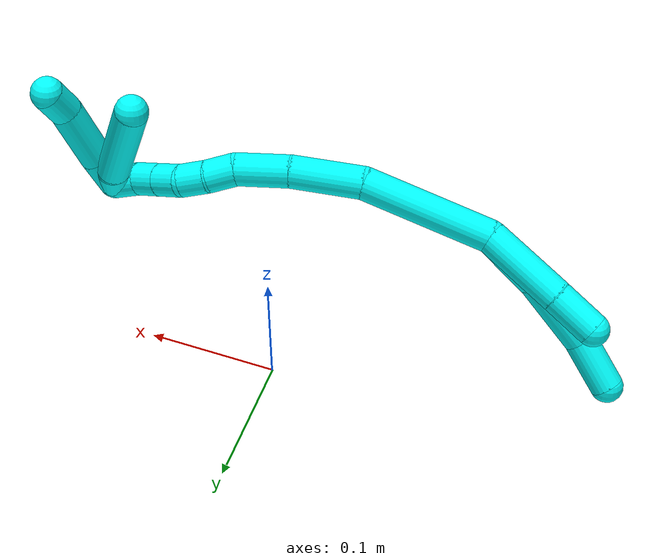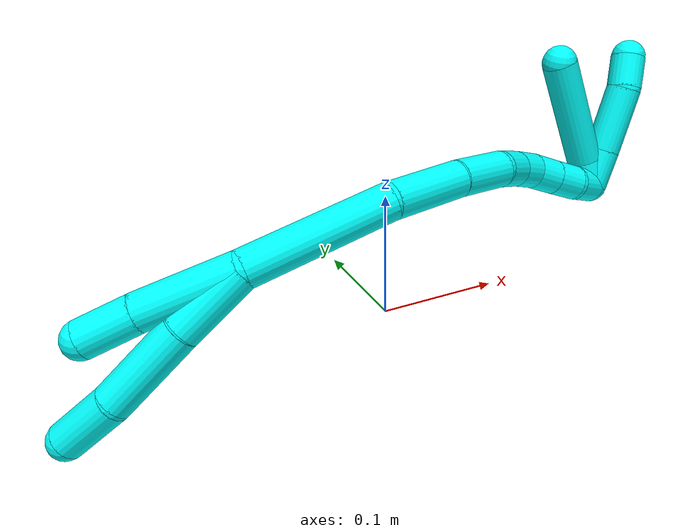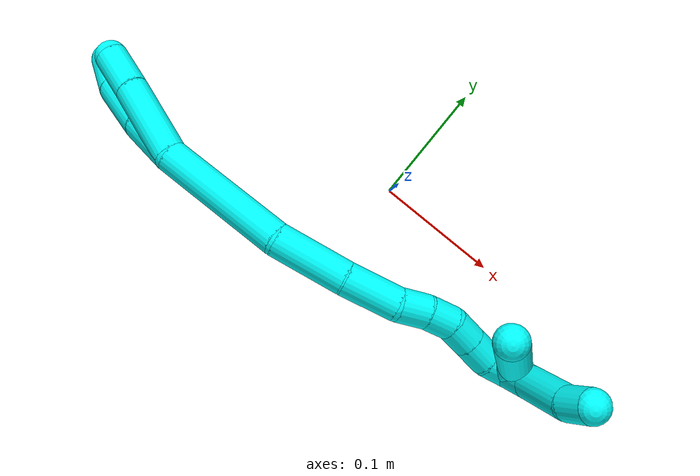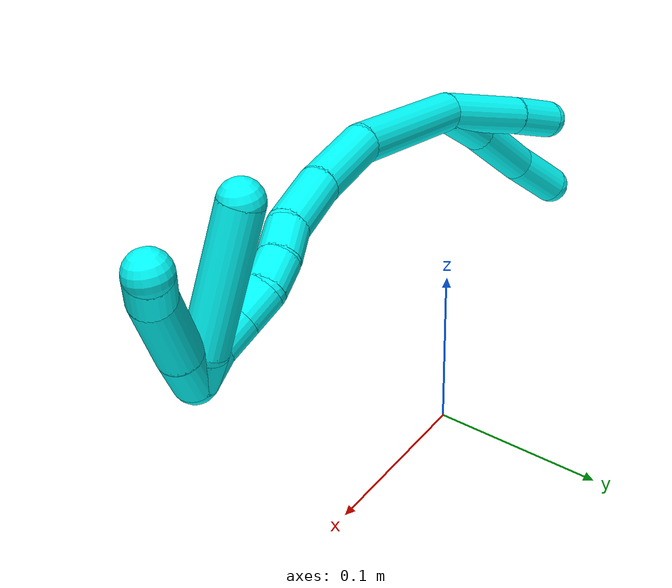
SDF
<sdf version="1.7">
 <world name="default">
  <model name="3">
   <static>0</static>
   <link name="3">
    <collision name="collision-cylinder-e_1_2_8">
     <pose>-0.018511 -0.001402 -0.01562 3.05207 -0.867913 -2.94888</pose>
     <geometry><cylinder><radius>0.0125</radius><length>0.048523</length></cylinder></geometry>
     <surface>
      <friction><ode><mu>1.16</mu><mu2>1.16</mu2><slip1>0</slip1><slip2>0</slip2></ode></friction>
      <contact><ode><kp>1e+06</kp><kd>1</kd><max_vel>0</max_vel><min_depth>0.001</min_depth></ode></contact>
     </surface>
    </collision>
    <visual name="visual-cylinder-e_1_2_8">
     <pose>-0.018511 -0.001402 -0.01562 3.05207 -0.867913 -2.94888</pose>
     <geometry><cylinder><radius>0.0125</radius><length>0.048523</length></cylinder></geometry>
     <material><ambient>0.003922 1 0.996078 1</ambient></material>
    </visual>
    <collision name="collision-cylinder-e_2_8_9">
     <pose>-0.058075 -0.002425 -0.052291 -3.12359 -0.785377 3.09814</pose>
     <geometry><cylinder><radius>0.0125</radius><length>0.059546</length></cylinder></geometry>
     <surface>
      <friction><ode><mu>1.16</mu><mu2>1.16</mu2><slip1>0</slip1><slip2>0</slip2></ode></friction>
      <contact><ode><kp>1e+06</kp><kd>1</kd><max_vel>0</max_vel><min_depth>0.001</min_depth></ode></contact>
     </surface>
    </collision>
    <visual name="visual-cylinder-e_2_8_9">
     <pose>-0.058075 -0.002425 -0.052291 -3.12359 -0.785377 3.09814</pose>
     <geometry><cylinder><radius>0.0125</radius><length>0.059546</length></cylinder></geometry>
     <material><ambient>0.003922 1 0.996078 1</ambient></material>
    </visual>
    <collision name="collision-cylinder-e_3_9_6">
     <pose>-0.093265 0.002479 -0.088146 -2.84496 -0.740067 2.40626</pose>
     <geometry><cylinder><radius>0.0125</radius><length>0.04193</length></cylinder></geometry>
     <surface>
      <friction><ode><mu>1.16</mu><mu2>1.16</mu2><slip1>0</slip1><slip2>0</slip2></ode></friction>
      <contact><ode><kp>1e+06</kp><kd>1</kd><max_vel>0</max_vel><min_depth>0.001</min_depth></ode></contact>
     </surface>
    </collision>
    <visual name="visual-cylinder-e_3_9_6">
     <pose>-0.093265 0.002479 -0.088146 -2.84496 -0.740067 2.40626</pose>
     <geometry><cylinder><radius>0.0125</radius><length>0.04193</length></cylinder></geometry>
     <material><ambient>0.003922 1 0.996078 1</ambient></material>
    </visual>
    <collision name="collision-cylinder-e_1_2_10">
     <pose>-0.028898 0.006821 -0.012539 -2.6434 -1.11199 2.36447</pose>
     <geometry><cylinder><radius>0.0125</radius><length>0.064462</length></cylinder></geometry>
     <surface>
      <friction><ode><mu>1.16</mu><mu2>1.16</mu2><slip1>0</slip1><slip2>0</slip2></ode></friction>
      <contact><ode><kp>1e+06</kp><kd>1</kd><max_vel>0</max_vel><min_depth>0.001</min_depth></ode></contact>
     </surface>
    </collision>
    <visual name="visual-cylinder-e_1_2_10">
     <pose>-0.028898 0.006821 -0.012539 -2.6434 -1.11199 2.36447</pose>
     <geometry><cylinder><radius>0.0125</radius><length>0.064462</length></cylinder></geometry>
     <material><ambient>0.003922 1 0.996078 1</ambient></material>
    </visual>
    <collision name="collision-cylinder-e_2_10_5">
     <pose>-0.073513 0.016747 -0.032764 -2.75755 -1.0855 2.51798</pose>
     <geometry><cylinder><radius>0.0125</radius><length>0.035538</length></cylinder></geometry>
     <surface>
      <friction><ode><mu>1.16</mu><mu2>1.16</mu2><slip1>0</slip1><slip2>0</slip2></ode></friction>
      <contact><ode><kp>1e+06</kp><kd>1</kd><max_vel>0</max_vel><min_depth>0.001</min_depth></ode></contact>
     </surface>
    </collision>
    <visual name="visual-cylinder-e_2_10_5">
     <pose>-0.073513 0.016747 -0.032764 -2.75755 -1.0855 2.51798</pose>
     <geometry><cylinder><radius>0.0125</radius><length>0.035538</length></cylinder></geometry>
     <material><ambient>0.003922 1 0.996078 1</ambient></material>
    </visual>
    <collision name="collision-cylinder-e_1_2_11">
     <pose>0.048638 0.004428 0.01118 -0.377149 1.32843 -0.296619</pose>
     <geometry><cylinder><radius>0.0125</radius><length>0.100204</length></cylinder></geometry>
     <surface>
      <friction><ode><mu>1.16</mu><mu2>1.16</mu2><slip1>0</slip1><slip2>0</slip2></ode></friction>
      <contact><ode><kp>1e+06</kp><kd>1</kd><max_vel>0</max_vel><min_depth>0.001</min_depth></ode></contact>
     </surface>
    </collision>
    <visual name="visual-cylinder-e_1_2_11">
     <pose>0.048638 0.004428 0.01118 -0.377149 1.32843 -0.296619</pose>
     <geometry><cylinder><radius>0.0125</radius><length>0.100204</length></cylinder></geometry>
     <material><ambient>0.003922 1 0.996078 1</ambient></material>
    </visual>
    <collision name="collision-cylinder-e_2_11_12">
     <pose>0.123994 0.014456 0.022503 -1.54515 1.36414 -1.3391</pose>
     <geometry><cylinder><radius>0.0125</radius><length>0.054598</length></cylinder></geometry>
     <surface>
      <friction><ode><mu>1.16</mu><mu2>1.16</mu2><slip1>0</slip1><slip2>0</slip2></ode></friction>
      <contact><ode><kp>1e+06</kp><kd>1</kd><max_vel>0</max_vel><min_depth>0.001</min_depth></ode></contact>
     </surface>
    </collision>
    <visual name="visual-cylinder-e_2_11_12">
     <pose>0.123994 0.014456 0.022503 -1.54515 1.36414 -1.3391</pose>
     <geometry><cylinder><radius>0.0125</radius><length>0.054598</length></cylinder></geometry>
     <material><ambient>0.003922 1 0.996078 1</ambient></material>
    </visual>
    <collision name="collision-cylinder-e_3_12_13">
     <pose>0.170378 0.024957 0.020434 -1.9948 1.3039 -1.73721</pose>
     <geometry><cylinder><radius>0.0125</radius><length>0.040776</length></cylinder></geometry>
     <surface>
      <friction><ode><mu>1.16</mu><mu2>1.16</mu2><slip1>0</slip1><slip2>0</slip2></ode></friction>
      <contact><ode><kp>1e+06</kp><kd>1</kd><max_vel>0</max_vel><min_depth>0.001</min_depth></ode></contact>
     </surface>
    </collision>
    <visual name="visual-cylinder-e_3_12_13">
     <pose>0.170378 0.024957 0.020434 -1.9948 1.3039 -1.73721</pose>
     <geometry><cylinder><radius>0.0125</radius><length>0.040776</length></cylinder></geometry>
     <material><ambient>0.003922 1 0.996078 1</ambient></material>
    </visual>
    <collision name="collision-cylinder-e_4_13_14">
     <pose>0.199694 0.034184 0.014495 -2.28194 1.03652 -1.78739</pose>
     <geometry><cylinder><radius>0.0125</radius><length>0.022426</length></cylinder></geometry>
     <surface>
      <friction><ode><mu>1.16</mu><mu2>1.16</mu2><slip1>0</slip1><slip2>0</slip2></ode></friction>
      <contact><ode><kp>1e+06</kp><kd>1</kd><max_vel>0</max_vel><min_depth>0.001</min_depth></ode></contact>
     </surface>
    </collision>
    <visual name="visual-cylinder-e_4_13_14">
     <pose>0.199694 0.034184 0.014495 -2.28194 1.03652 -1.78739</pose>
     <geometry><cylinder><radius>0.0125</radius><length>0.022426</length></cylinder></geometry>
     <material><ambient>0.003922 1 0.996078 1</ambient></material>
    </visual>
    <collision name="collision-cylinder-e_5_14_15">
     <pose>0.218876 0.040794 0.007184 -2.57421 1.15133 -2.29714</pose>
     <geometry><cylinder><radius>0.0125</radius><length>0.020872</length></cylinder></geometry>
     <surface>
      <friction><ode><mu>1.16</mu><mu2>1.16</mu2><slip1>0</slip1><slip2>0</slip2></ode></friction>
      <contact><ode><kp>1e+06</kp><kd>1</kd><max_vel>0</max_vel><min_depth>0.001</min_depth></ode></contact>
     </surface>
    </collision>
    <visual name="visual-cylinder-e_5_14_15">
     <pose>0.218876 0.040794 0.007184 -2.57421 1.15133 -2.29714</pose>
     <geometry><cylinder><radius>0.0125</radius><length>0.020872</length></cylinder></geometry>
     <material><ambient>0.003922 1 0.996078 1</ambient></material>
    </visual>
    <collision name="collision-cylinder-e_6_15_16">
     <pose>0.23778 0.041904 -1e-05 2.827 1.18603 2.67932</pose>
     <geometry><cylinder><radius>0.0125</radius><length>0.020224</length></cylinder></geometry>
     <surface>
      <friction><ode><mu>1.16</mu><mu2>1.16</mu2><slip1>0</slip1><slip2>0</slip2></ode></friction>
      <contact><ode><kp>1e+06</kp><kd>1</kd><max_vel>0</max_vel><min_depth>0.001</min_depth></ode></contact>
     </surface>
    </collision>
    <visual name="visual-cylinder-e_6_15_16">
     <pose>0.23778 0.041904 -1e-05 2.827 1.18603 2.67932</pose>
     <geometry><cylinder><radius>0.0125</radius><length>0.020224</length></cylinder></geometry>
     <material><ambient>0.003922 1 0.996078 1</ambient></material>
    </visual>
    <collision name="collision-cylinder-e_7_16_17">
     <pose>0.256787 0.039594 -0.007201 2.83458 1.19889 2.69624</pose>
     <geometry><cylinder><radius>0.0125</radius><length>0.020682</length></cylinder></geometry>
     <surface>
      <friction><ode><mu>1.16</mu><mu2>1.16</mu2><slip1>0</slip1><slip2>0</slip2></ode></friction>
      <contact><ode><kp>1e+06</kp><kd>1</kd><max_vel>0</max_vel><min_depth>0.001</min_depth></ode></contact>
     </surface>
    </collision>
    <visual name="visual-cylinder-e_7_16_17">
     <pose>0.256787 0.039594 -0.007201 2.83458 1.19889 2.69624</pose>
     <geometry><cylinder><radius>0.0125</radius><length>0.020682</length></cylinder></geometry>
     <material><ambient>0.003922 1 0.996078 1</ambient></material>
    </visual>
    <collision name="collision-cylinder-e_8_17_1">
     <pose>0.275771 0.040135 -0.014239 -2.6899 1.18098 -2.48111</pose>
     <geometry><cylinder><radius>0.0125</radius><length>0.020218</length></cylinder></geometry>
     <surface>
      <friction><ode><mu>1.16</mu><mu2>1.16</mu2><slip1>0</slip1><slip2>0</slip2></ode></friction>
      <contact><ode><kp>1e+06</kp><kd>1</kd><max_vel>0</max_vel><min_depth>0.001</min_depth></ode></contact>
     </surface>
    </collision>
    <visual name="visual-cylinder-e_8_17_1">
     <pose>0.275771 0.040135 -0.014239 -2.6899 1.18098 -2.48111</pose>
     <geometry><cylinder><radius>0.0125</radius><length>0.020218</length></cylinder></geometry>
     <material><ambient>0.003922 1 0.996078 1</ambient></material>
    </visual>
    <collision name="collision-cylinder-e_1_1_18">
     <pose>0.290707 0.045211 -0.005377 -0.269252 0.41207 -0.056601</pose>
     <geometry><cylinder><radius>0.0125</radius><length>0.027892</length></cylinder></geometry>
     <surface>
      <friction><ode><mu>1.16</mu><mu2>1.16</mu2><slip1>0</slip1><slip2>0</slip2></ode></friction>
      <contact><ode><kp>1e+06</kp><kd>1</kd><max_vel>0</max_vel><min_depth>0.001</min_depth></ode></contact>
     </surface>
    </collision>
    <visual name="visual-cylinder-e_1_1_18">
     <pose>0.290707 0.045211 -0.005377 -0.269252 0.41207 -0.056601</pose>
     <geometry><cylinder><radius>0.0125</radius><length>0.027892</length></cylinder></geometry>
     <material><ambient>0.003922 1 0.996078 1</ambient></material>
    </visual>
    <collision name="collision-cylinder-e_2_18_19">
     <pose>0.304764 0.054024 0.028919 -0.241535 0.358123 -0.043925</pose>
     <geometry><cylinder><radius>0.0125</radius><length>0.048337</length></cylinder></geometry>
     <surface>
      <friction><ode><mu>1.16</mu><mu2>1.16</mu2><slip1>0</slip1><slip2>0</slip2></ode></friction>
      <contact><ode><kp>1e+06</kp><kd>1</kd><max_vel>0</max_vel><min_depth>0.001</min_depth></ode></contact>
     </surface>
    </collision>
    <visual name="visual-cylinder-e_2_18_19">
     <pose>0.304764 0.054024 0.028919 -0.241535 0.358123 -0.043925</pose>
     <geometry><cylinder><radius>0.0125</radius><length>0.048337</length></cylinder></geometry>
     <material><ambient>0.003922 1 0.996078 1</ambient></material>
    </visual>
    <collision name="collision-cylinder-e_3_19_4">
     <pose>0.316915 0.064913 0.060785 -0.505645 0.314759 -0.08195</pose>
     <geometry><cylinder><radius>0.0125</radius><length>0.023771</length></cylinder></geometry>
     <surface>
      <friction><ode><mu>1.16</mu><mu2>1.16</mu2><slip1>0</slip1><slip2>0</slip2></ode></friction>
      <contact><ode><kp>1e+06</kp><kd>1</kd><max_vel>0</max_vel><min_depth>0.001</min_depth></ode></contact>
     </surface>
    </collision>
    <visual name="visual-cylinder-e_3_19_4">
     <pose>0.316915 0.064913 0.060785 -0.505645 0.314759 -0.08195</pose>
     <geometry><cylinder><radius>0.0125</radius><length>0.023771</length></cylinder></geometry>
     <material><ambient>0.003922 1 0.996078 1</ambient></material>
    </visual>
    <collision name="collision-cylinder-e_1_1_20">
     <pose>0.283397 0.045947 -0.008645 -0.428557 -0.171638 0.037439</pose>
     <geometry><cylinder><radius>0.0125</radius><length>0.020198</length></cylinder></geometry>
     <surface>
      <friction><ode><mu>1.16</mu><mu2>1.16</mu2><slip1>0</slip1><slip2>0</slip2></ode></friction>
      <contact><ode><kp>1e+06</kp><kd>1</kd><max_vel>0</max_vel><min_depth>0.001</min_depth></ode></contact>
     </surface>
    </collision>
    <visual name="visual-cylinder-e_1_1_20">
     <pose>0.283397 0.045947 -0.008645 -0.428557 -0.171638 0.037439</pose>
     <geometry><cylinder><radius>0.0125</radius><length>0.020198</length></cylinder></geometry>
     <material><ambient>0.003922 1 0.996078 1</ambient></material>
    </visual>
    <collision name="collision-cylinder-e_2_20_3">
     <pose>0.26819 0.058721 0.036953 -0.23212 -0.344662 0.040579</pose>
     <geometry><cylinder><radius>0.0125</radius><length>0.079802</length></cylinder></geometry>
     <surface>
      <friction><ode><mu>1.16</mu><mu2>1.16</mu2><slip1>0</slip1><slip2>0</slip2></ode></friction>
      <contact><ode><kp>1e+06</kp><kd>1</kd><max_vel>0</max_vel><min_depth>0.001</min_depth></ode></contact>
     </surface>
    </collision>
    <visual name="visual-cylinder-e_2_20_3">
     <pose>0.26819 0.058721 0.036953 -0.23212 -0.344662 0.040579</pose>
     <geometry><cylinder><radius>0.0125</radius><length>0.079802</length></cylinder></geometry>
     <material><ambient>0.003922 1 0.996078 1</ambient></material>
    </visual>
    <collision name="collision-sphere-3">
     <pose>0.254709 0.06736 0.073501 0 -0 0</pose>
     <geometry><sphere><radius>0.0125</radius></sphere></geometry>
     <surface>
      <friction><ode><mu>1.16</mu><mu2>1.16</mu2><slip1>0</slip1><slip2>0</slip2></ode></friction>
      <contact><ode><kp>1e+06</kp><kd>1</kd><max_vel>0</max_vel><min_depth>0.001</min_depth></ode></contact>
     </surface>
    </collision>
    <visual name="visual-sphere-3">
     <pose>0.254709 0.06736 0.073501 0 -0 0</pose>
     <geometry><sphere><radius>0.0125</radius></sphere></geometry>
     <material><ambient>0.003922 1 0.996078 1</ambient></material>
    </visual>
    <collision name="collision-sphere-20">
     <pose>0.281672 0.050082 0.000406 0 -0 0</pose>
     <geometry><sphere><radius>0.0125</radius></sphere></geometry>
     <surface>
      <friction><ode><mu>1.16</mu><mu2>1.16</mu2><slip1>0</slip1><slip2>0</slip2></ode></friction>
      <contact><ode><kp>1e+06</kp><kd>1</kd><max_vel>0</max_vel><min_depth>0.001</min_depth></ode></contact>
     </surface>
    </collision>
    <visual name="visual-sphere-20">
     <pose>0.281672 0.050082 0.000406 0 -0 0</pose>
     <geometry><sphere><radius>0.0125</radius></sphere></geometry>
     <material><ambient>0.003922 1 0.996078 1</ambient></material>
    </visual>
    <collision name="collision-sphere-4">
     <pose>0.320595 0.070387 0.070672 0 -0 0</pose>
     <geometry><sphere><radius>0.0125</radius></sphere></geometry>
     <surface>
      <friction><ode><mu>1.16</mu><mu2>1.16</mu2><slip1>0</slip1><slip2>0</slip2></ode></friction>
      <contact><ode><kp>1e+06</kp><kd>1</kd><max_vel>0</max_vel><min_depth>0.001</min_depth></ode></contact>
     </surface>
    </collision>
    <visual name="visual-sphere-4">
     <pose>0.320595 0.070387 0.070672 0 -0 0</pose>
     <geometry><sphere><radius>0.0125</radius></sphere></geometry>
     <material><ambient>0.003922 1 0.996078 1</ambient></material>
    </visual>
    <collision name="collision-sphere-5">
     <pose>-0.08923 0.019853 -0.040448 0 -0 0</pose>
     <geometry><sphere><radius>0.0125</radius></sphere></geometry>
     <surface>
      <friction><ode><mu>1.16</mu><mu2>1.16</mu2><slip1>0</slip1><slip2>0</slip2></ode></friction>
      <contact><ode><kp>1e+06</kp><kd>1</kd><max_vel>0</max_vel><min_depth>0.001</min_depth></ode></contact>
     </surface>
    </collision>
    <visual name="visual-sphere-5">
     <pose>-0.08923 0.019853 -0.040448 0 -0 0</pose>
     <geometry><sphere><radius>0.0125</radius></sphere></geometry>
     <material><ambient>0.003922 1 0.996078 1</ambient></material>
    </visual>
    <collision name="collision-sphere-10">
     <pose>-0.057796 0.013642 -0.025079 0 -0 0</pose>
     <geometry><sphere><radius>0.0125</radius></sphere></geometry>
     <surface>
      <friction><ode><mu>1.16</mu><mu2>1.16</mu2><slip1>0</slip1><slip2>0</slip2></ode></friction>
      <contact><ode><kp>1e+06</kp><kd>1</kd><max_vel>0</max_vel><min_depth>0.001</min_depth></ode></contact>
     </surface>
    </collision>
    <visual name="visual-sphere-10">
     <pose>-0.057796 0.013642 -0.025079 0 -0 0</pose>
     <geometry><sphere><radius>0.0125</radius></sphere></geometry>
     <material><ambient>0.003922 1 0.996078 1</ambient></material>
    </visual>
    <collision name="collision-sphere-6">
     <pose>-0.107402 0.007004 -0.102951 0 -0 0</pose>
     <geometry><sphere><radius>0.0125</radius></sphere></geometry>
     <surface>
      <friction><ode><mu>1.16</mu><mu2>1.16</mu2><slip1>0</slip1><slip2>0</slip2></ode></friction>
      <contact><ode><kp>1e+06</kp><kd>1</kd><max_vel>0</max_vel><min_depth>0.001</min_depth></ode></contact>
     </surface>
    </collision>
    <visual name="visual-sphere-6">
     <pose>-0.107402 0.007004 -0.102951 0 -0 0</pose>
     <geometry><sphere><radius>0.0125</radius></sphere></geometry>
     <material><ambient>0.003922 1 0.996078 1</ambient></material>
    </visual>
    <collision name="collision-sphere-9">
     <pose>-0.079127 -0.002046 -0.07334 0 -0 0</pose>
     <geometry><sphere><radius>0.0125</radius></sphere></geometry>
     <surface>
      <friction><ode><mu>1.16</mu><mu2>1.16</mu2><slip1>0</slip1><slip2>0</slip2></ode></friction>
      <contact><ode><kp>1e+06</kp><kd>1</kd><max_vel>0</max_vel><min_depth>0.001</min_depth></ode></contact>
     </surface>
    </collision>
    <visual name="visual-sphere-9">
     <pose>-0.079127 -0.002046 -0.07334 0 -0 0</pose>
     <geometry><sphere><radius>0.0125</radius></sphere></geometry>
     <material><ambient>0.003922 1 0.996078 1</ambient></material>
    </visual>
    <collision name="collision-sphere-2">
     <geometry><sphere><radius>0.0125</radius></sphere></geometry>
     <surface>
      <friction><ode><mu>1.16</mu><mu2>1.16</mu2><slip1>0</slip1><slip2>0</slip2></ode></friction>
      <contact><ode><kp>1e+06</kp><kd>1</kd><max_vel>0</max_vel><min_depth>0.001</min_depth></ode></contact>
     </surface>
    </collision>
    <visual name="visual-sphere-2">
     <geometry><sphere><radius>0.0125</radius></sphere></geometry>
     <material><ambient>0.003922 1 0.996078 1</ambient></material>
    </visual>
    <collision name="collision-sphere-19">
     <pose>0.313236 0.059438 0.050897 0 -0 0</pose>
     <geometry><sphere><radius>0.0125</radius></sphere></geometry>
     <surface>
      <friction><ode><mu>1.16</mu><mu2>1.16</mu2><slip1>0</slip1><slip2>0</slip2></ode></friction>
      <contact><ode><kp>1e+06</kp><kd>1</kd><max_vel>0</max_vel><min_depth>0.001</min_depth></ode></contact>
     </surface>
    </collision>
    <visual name="visual-sphere-19">
     <pose>0.313236 0.059438 0.050897 0 -0 0</pose>
     <geometry><sphere><radius>0.0125</radius></sphere></geometry>
     <material><ambient>0.003922 1 0.996078 1</ambient></material>
    </visual>
    <collision name="collision-sphere-8">
     <pose>-0.037023 -0.002804 -0.031241 0 -0 0</pose>
     <geometry><sphere><radius>0.0125</radius></sphere></geometry>
     <surface>
      <friction><ode><mu>1.16</mu><mu2>1.16</mu2><slip1>0</slip1><slip2>0</slip2></ode></friction>
      <contact><ode><kp>1e+06</kp><kd>1</kd><max_vel>0</max_vel><min_depth>0.001</min_depth></ode></contact>
     </surface>
    </collision>
    <visual name="visual-sphere-8">
     <pose>-0.037023 -0.002804 -0.031241 0 -0 0</pose>
     <geometry><sphere><radius>0.0125</radius></sphere></geometry>
     <material><ambient>0.003922 1 0.996078 1</ambient></material>
    </visual>
    <collision name="collision-sphere-11">
     <pose>0.097275 0.008857 0.022359 0 -0 0</pose>
     <geometry><sphere><radius>0.0125</radius></sphere></geometry>
     <surface>
      <friction><ode><mu>1.16</mu><mu2>1.16</mu2><slip1>0</slip1><slip2>0</slip2></ode></friction>
      <contact><ode><kp>1e+06</kp><kd>1</kd><max_vel>0</max_vel><min_depth>0.001</min_depth></ode></contact>
     </surface>
    </collision>
    <visual name="visual-sphere-11">
     <pose>0.097275 0.008857 0.022359 0 -0 0</pose>
     <geometry><sphere><radius>0.0125</radius></sphere></geometry>
     <material><ambient>0.003922 1 0.996078 1</ambient></material>
    </visual>
    <collision name="collision-sphere-12">
     <pose>0.150712 0.020056 0.022646 0 -0 0</pose>
     <geometry><sphere><radius>0.0125</radius></sphere></geometry>
     <surface>
      <friction><ode><mu>1.16</mu><mu2>1.16</mu2><slip1>0</slip1><slip2>0</slip2></ode></friction>
      <contact><ode><kp>1e+06</kp><kd>1</kd><max_vel>0</max_vel><min_depth>0.001</min_depth></ode></contact>
     </surface>
    </collision>
    <visual name="visual-sphere-12">
     <pose>0.150712 0.020056 0.022646 0 -0 0</pose>
     <geometry><sphere><radius>0.0125</radius></sphere></geometry>
     <material><ambient>0.003922 1 0.996078 1</ambient></material>
    </visual>
    <collision name="collision-sphere-13">
     <pose>0.190044 0.029858 0.018222 0 -0 0</pose>
     <geometry><sphere><radius>0.0125</radius></sphere></geometry>
     <surface>
      <friction><ode><mu>1.16</mu><mu2>1.16</mu2><slip1>0</slip1><slip2>0</slip2></ode></friction>
      <contact><ode><kp>1e+06</kp><kd>1</kd><max_vel>0</max_vel><min_depth>0.001</min_depth></ode></contact>
     </surface>
    </collision>
    <visual name="visual-sphere-13">
     <pose>0.190044 0.029858 0.018222 0 -0 0</pose>
     <geometry><sphere><radius>0.0125</radius></sphere></geometry>
     <material><ambient>0.003922 1 0.996078 1</ambient></material>
    </visual>
    <collision name="collision-sphere-14">
     <pose>0.209345 0.03851 0.010768 0 -0 0</pose>
     <geometry><sphere><radius>0.0125</radius></sphere></geometry>
     <surface>
      <friction><ode><mu>1.16</mu><mu2>1.16</mu2><slip1>0</slip1><slip2>0</slip2></ode></friction>
      <contact><ode><kp>1e+06</kp><kd>1</kd><max_vel>0</max_vel><min_depth>0.001</min_depth></ode></contact>
     </surface>
    </collision>
    <visual name="visual-sphere-14">
     <pose>0.209345 0.03851 0.010768 0 -0 0</pose>
     <geometry><sphere><radius>0.0125</radius></sphere></geometry>
     <material><ambient>0.003922 1 0.996078 1</ambient></material>
    </visual>
    <collision name="collision-sphere-15">
     <pose>0.228408 0.043078 0.0036 0 -0 0</pose>
     <geometry><sphere><radius>0.0125</radius></sphere></geometry>
     <surface>
      <friction><ode><mu>1.16</mu><mu2>1.16</mu2><slip1>0</slip1><slip2>0</slip2></ode></friction>
      <contact><ode><kp>1e+06</kp><kd>1</kd><max_vel>0</max_vel><min_depth>0.001</min_depth></ode></contact>
     </surface>
    </collision>
    <visual name="visual-sphere-15">
     <pose>0.228408 0.043078 0.0036 0 -0 0</pose>
     <geometry><sphere><radius>0.0125</radius></sphere></geometry>
     <material><ambient>0.003922 1 0.996078 1</ambient></material>
    </visual>
    <collision name="collision-sphere-16">
     <pose>0.247153 0.040729 -0.003619 0 -0 0</pose>
     <geometry><sphere><radius>0.0125</radius></sphere></geometry>
     <surface>
      <friction><ode><mu>1.16</mu><mu2>1.16</mu2><slip1>0</slip1><slip2>0</slip2></ode></friction>
      <contact><ode><kp>1e+06</kp><kd>1</kd><max_vel>0</max_vel><min_depth>0.001</min_depth></ode></contact>
     </surface>
    </collision>
    <visual name="visual-sphere-16">
     <pose>0.247153 0.040729 -0.003619 0 -0 0</pose>
     <geometry><sphere><radius>0.0125</radius></sphere></geometry>
     <material><ambient>0.003922 1 0.996078 1</ambient></material>
    </visual>
    <collision name="collision-sphere-17">
     <pose>0.266421 0.038458 -0.010783 0 -0 0</pose>
     <geometry><sphere><radius>0.0125</radius></sphere></geometry>
     <surface>
      <friction><ode><mu>1.16</mu><mu2>1.16</mu2><slip1>0</slip1><slip2>0</slip2></ode></friction>
      <contact><ode><kp>1e+06</kp><kd>1</kd><max_vel>0</max_vel><min_depth>0.001</min_depth></ode></contact>
     </surface>
    </collision>
    <visual name="visual-sphere-17">
     <pose>0.266421 0.038458 -0.010783 0 -0 0</pose>
     <geometry><sphere><radius>0.0125</radius></sphere></geometry>
     <material><ambient>0.003922 1 0.996078 1</ambient></material>
    </visual>
    <collision name="collision-sphere-1">
     <pose>0.285122 0.041812 -0.017695 0 -0 0</pose>
     <geometry><sphere><radius>0.0125</radius></sphere></geometry>
     <surface>
      <friction><ode><mu>1.16</mu><mu2>1.16</mu2><slip1>0</slip1><slip2>0</slip2></ode></friction>
      <contact><ode><kp>1e+06</kp><kd>1</kd><max_vel>0</max_vel><min_depth>0.001</min_depth></ode></contact>
     </surface>
    </collision>
    <visual name="visual-sphere-1">
     <pose>0.285122 0.041812 -0.017695 0 -0 0</pose>
     <geometry><sphere><radius>0.0125</radius></sphere></geometry>
     <material><ambient>0.003922 1 0.996078 1</ambient></material>
    </visual>
    <collision name="collision-sphere-18">
     <pose>0.296293 0.04861 0.006941 0 -0 0</pose>
     <geometry><sphere><radius>0.0125</radius></sphere></geometry>
     <surface>
      <friction><ode><mu>1.16</mu><mu2>1.16</mu2><slip1>0</slip1><slip2>0</slip2></ode></friction>
      <contact><ode><kp>1e+06</kp><kd>1</kd><max_vel>0</max_vel><min_depth>0.001</min_depth></ode></contact>
     </surface>
    </collision>
    <visual name="visual-sphere-18">
     <pose>0.296293 0.04861 0.006941 0 -0 0</pose>
     <geometry><sphere><radius>0.0125</radius></sphere></geometry>
     <material><ambient>0.003922 1 0.996078 1</ambient></material>
    </visual>
    <inertial>
     <pose>0.117453 0.024403 -0.001137 0 -0 0</pose>
     <mass>0.75</mass>
     <inertia>
      <ixx>5.1e-05</ixx>
      <ixy>0</ixy>
      <ixz>0</ixz>
      <iyy>0.000254</iyy>
      <iyz>0</iyz>
      <izz>-8.4e-05</izz>
     </inertia>
    </inertial>
   </link>
   <pose>-0.13946 -0.089288 0.114075 0.149237 0.001471 -0.036998</pose>
  </model>
 </world>
</sdf>
